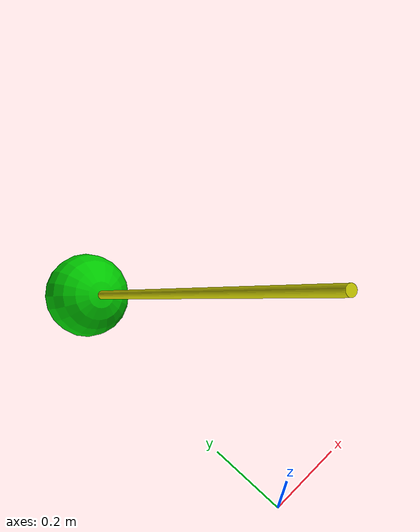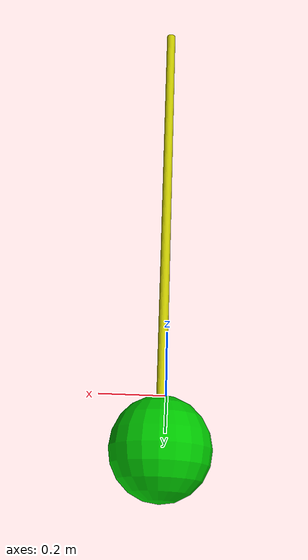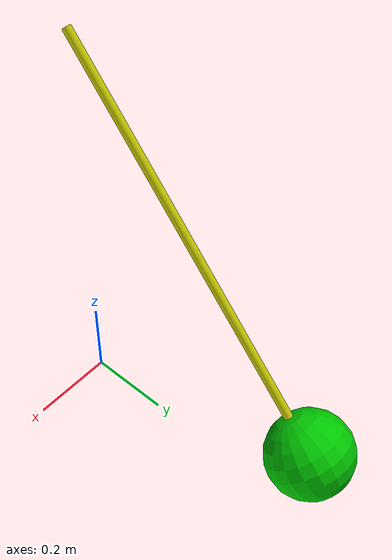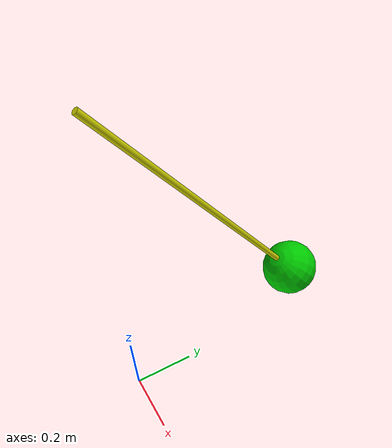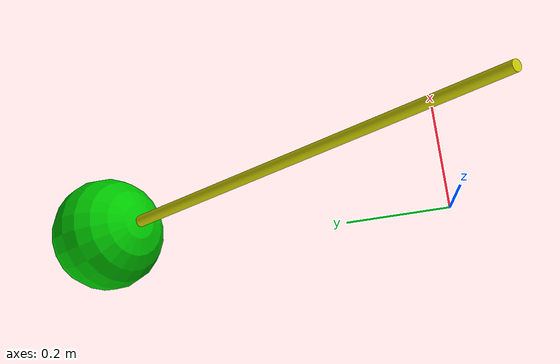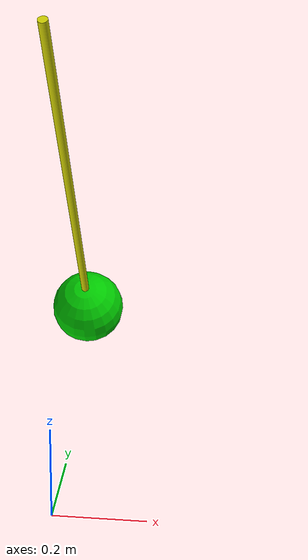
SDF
<?xml version="1.0" ?>
<sdf version="1.7">
  <world name="string_pendulum.sdf">
    <model name="pendulum">
      <pose>0 0 1   0 0 0</pose>

      <joint name="j0" type="fixed">
        <parent>world</parent>
        <child>support</child>
      </joint>

      <link name="support">
        <inertial>
          <mass>0.001</mass>
        </inertial>
      </link>

      <joint name="pivot" type="revolute">
        <!-- Rotate pivot so simulation starts with pendulum swinging  -->
        <pose relative_to="support">0 0 0   0.7 0 0</pose>
        <parent>support</parent>
        <child>bob</child>
        <axis>
          <xyz>1 0 0</xyz>
        </axis>
      </joint>

      <link name="bob">
        <pose relative_to="pivot">0 0 -1   0 0 0</pose>
        <inertial>
          <mass>6</mass>
          <inertia>
            <ixx>0.01</ixx>
            <iyy>0.01</iyy>
            <izz>0.01</izz>
          </inertia>
        </inertial>
        <visual name="bob_vis">
          <geometry>
            <sphere>
              <radius>0.1</radius>
            </sphere>
          </geometry>
          <material>
            <ambient>0.0 0.8 0.0 1</ambient>
            <diffuse>0.0 0.8 0.0 1</diffuse>
          </material>
        </visual>
        <visual name="string_vis">
          <pose>0 0 0.5   0 0 0</pose>
          <geometry>
            <cylinder>
              <radius>0.01</radius>
              <length>1.0</length>
            </cylinder>
          </geometry>
          <material>
            <ambient>0.8 0.8 0.0 1</ambient>
            <diffuse>0.8 0.8 0.0 1</diffuse>
          </material>
        </visual>
        <collision name="bob_col">
          <geometry>
            <sphere>
              <radius>1</radius>
            </sphere>
          </geometry>
        </collision>
      </link>
    </model>
  </world>
</sdf>
